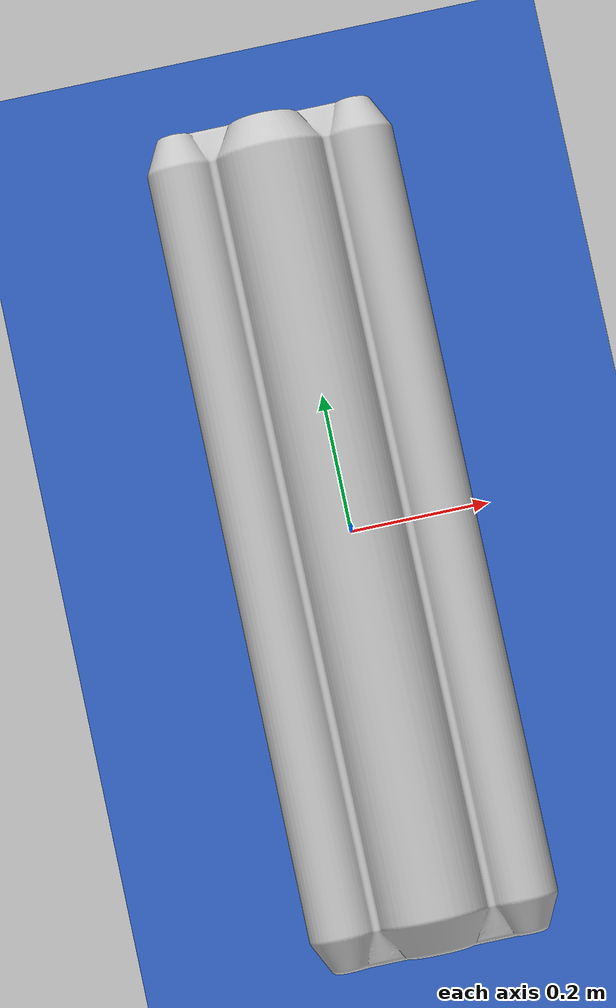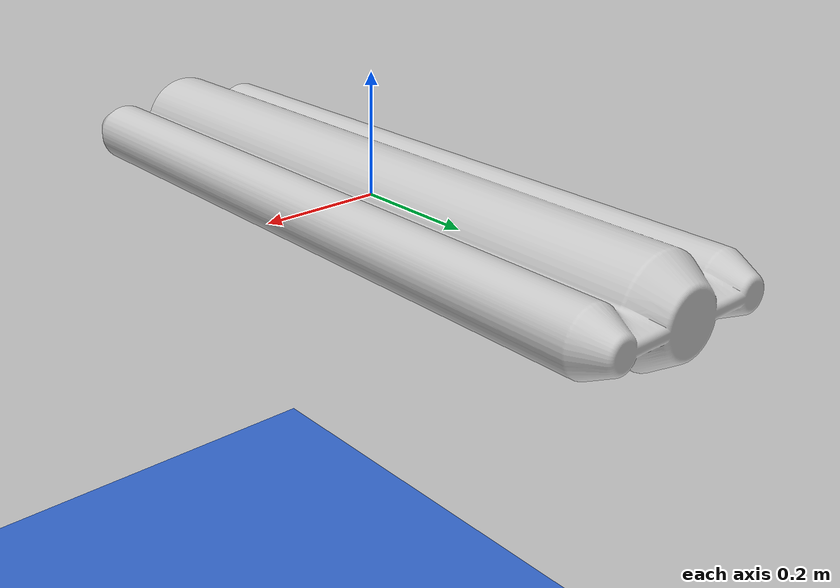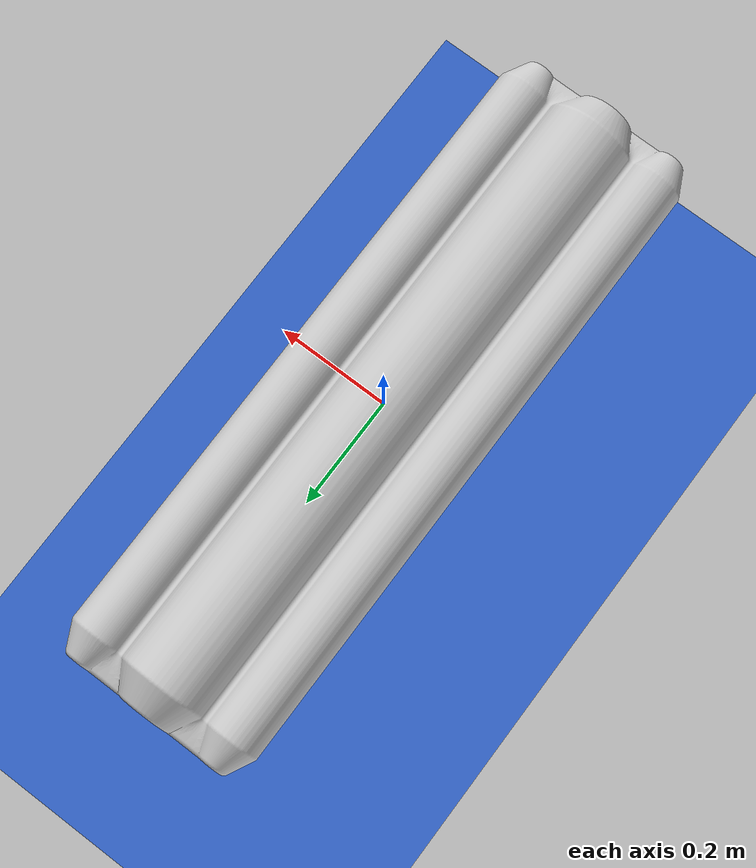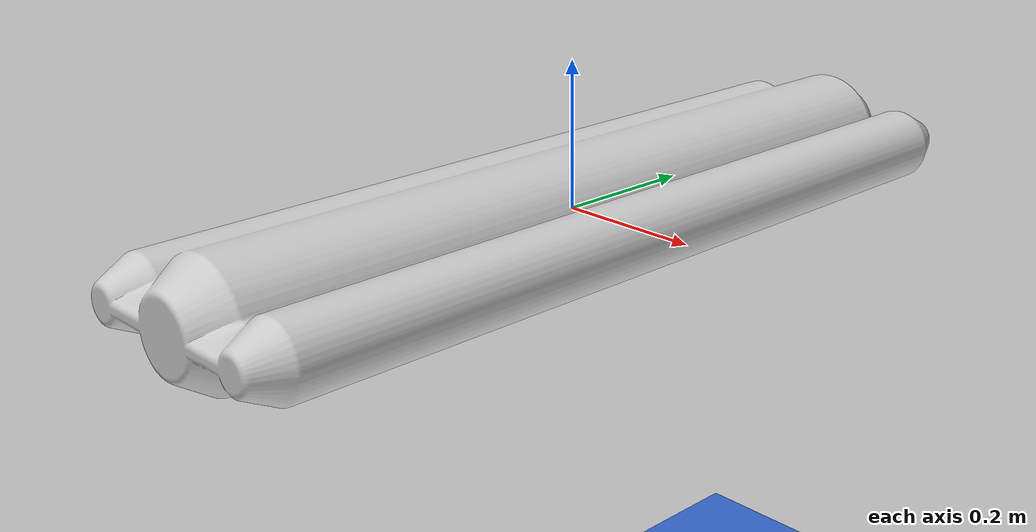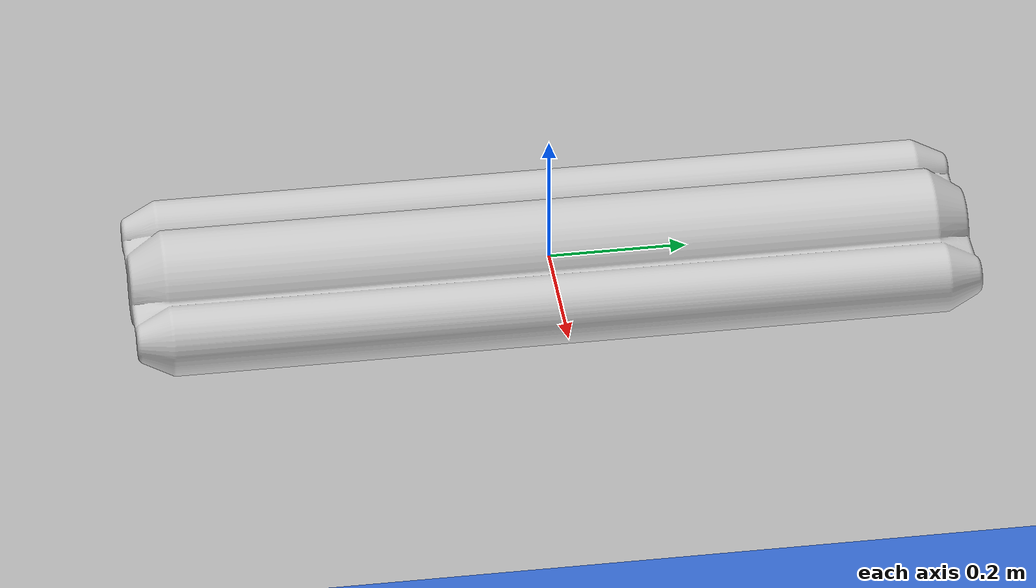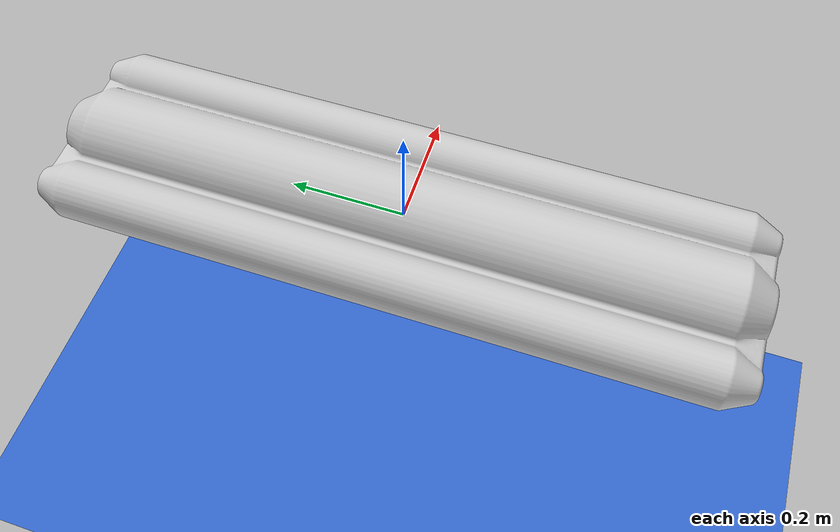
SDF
<?xml version='1.0' encoding='utf-8'?>
<sdf version="1.9">
	<world name="custom_world">

		<plugin
			filename="libignition-gazebo-scene-broadcaster-system.so"
			name="gz::sim::systems::SceneBroadcaster">
		</plugin>
		<physics name='20ms' type='ode'>
			<max_step_size>0.020</max_step_size>
			<real_time_factor>1</real_time_factor>
			<real_time_update_rate>50</real_time_update_rate>
		</physics>

		<plugin
			filename="ignition-gazebo-physics-system"
			name="ignition::gazebo::systems::Physics">
		</plugin>

		<plugin
			filename="ignition-gazebo-scene-broadcaster-system"
			name="ignition::gazebo::systems::SceneBroadcaster">
		</plugin>

		<plugin name='gz::sim::systems::UserCommands'
			filename='ignition-gazebo-user-commands-system' />

		<plugin name='gz::sim::systems::Buoyancy'
			filename='ignition-gazebo-buoyancy-system'>
			<uniform_fluid_density>1000</uniform_fluid_density>
		</plugin>

		<plugin filename="ignition-gazebo-imu-system"
			name="ignition::gazebo::systems::Imu" />

		<engine>ogre2</engine>
		<camera_pose>8.3 7 7.8 0 0.5 -2.4</camera_pose>
		<gravity>0 0 -9.8</gravity>
		<magnetic_field>6e-06 2.3e-05 -4.2e-05</magnetic_field>
		<atmosphere type='adiabatic' />

		<light name='sun' type='directional'>
			<pose>0 0 10 0 -0 0</pose>
			<cast_shadows>false</cast_shadows>
			<intensity>1</intensity>
			<direction>0 0 -1</direction> <!-- Vertical down -->
			<diffuse>1 1 1 1</diffuse>
			<specular>0.5 0.5 0.5 1</specular>
			<attenuation>
				<range>1000</range>
				<linear>0.01</linear>
				<constant>0.90000000000000002</constant>
				<quadratic>0.001</quadratic>
			</attenuation>
			<spot>
				<inner_angle>0</inner_angle>
				<outer_angle>0</outer_angle>
				<falloff>0</falloff>
			</spot>
		</light>

		<model name="fish_robot">

			<link name="fish_body">
				<pose>0 0 0 1.5708 0 0</pose>

				<!-- IMU 1: Center -->
				<sensor name="imu_sensor_1" type="imu">
					<pose>0 0 0 0 0 0</pose>
					<always_on>1</always_on>
					<update_rate>100</update_rate>
					<visualize>true</visualize>
					<topic>/imu_1</topic>
					<imu>
						<angular_velocity>true</angular_velocity>
						<linear_acceleration>true</linear_acceleration>
						<orientation>true</orientation>
					</imu>
				</sensor>

				<!-- IMU 2: Front -->
				<sensor name="imu_sensor_2" type="imu">
					<pose>0.2 0 0 0 0 0</pose>
					<always_on>1</always_on>
					<update_rate>100</update_rate>
					<visualize>true</visualize>
					<topic>/imu_2</topic>
					<imu>
						<angular_velocity>true</angular_velocity>
						<linear_acceleration>true</linear_acceleration>
						<orientation>true</orientation>
					</imu>
				</sensor>

				<!-- IMU 3: Left -->
				<sensor name="imu_sensor_3" type="imu">
					<pose>0 0.2 0 0 0 0</pose>
					<always_on>1</always_on>
					<update_rate>100</update_rate>
					<visualize>true</visualize>
					<topic>/imu_3</topic>
					<imu>
						<angular_velocity>true</angular_velocity>
						<linear_acceleration>true</linear_acceleration>
						<orientation>true</orientation>
					</imu>
				</sensor>

				<!-- IMU 4: Right -->
				<sensor name="imu_sensor_4" type="imu">
					<pose>0 -0.2 0 0 0 0</pose>
					<always_on>1</always_on>
					<update_rate>100</update_rate>
					<visualize>true</visualize>
					<topic>/imu_4</topic>
					<imu>
						<angular_velocity>true</angular_velocity>
						<linear_acceleration>true</linear_acceleration>
						<orientation>true</orientation>
					</imu>
				</sensor>

				<inertial>
					<pose>0 0 0 0 0 0</pose>
					<mass>62.99300000</mass>
					<inertia>

						<ixx>7.49</ixx>
						<ixy>0.00</ixy>
						<ixz>0.00</ixz>
						<iyy>7.49</iyy>
						<iyz>0.00</iyz>
						<izz>0.60</izz>
					</inertia>
				</inertial>

				<collision name="fish_collision">
					<geometry>
						<mesh>
							<uri>
								/home/maycuaaiz/Desktop/FishRobot-ROS/models/hull_mesh.stl</uri>
							<scale>1 1 1</scale>
						</mesh>
					</geometry>
				</collision>

				<visual name="fish_visual">
					<pose>-0.18130304269 -0.08284609487 -0.61094072595 0 0 0</pose>

					<cast_shadows>1</cast_shadows>
					<transparency>0</transparency>

					<geometry>
						<mesh>
							<uri>
								/home/maycuaaiz/Desktop/FishRobot-ROS/models/hull_mesh.stl</uri>
							<scale>1 1 1</scale>
						</mesh>
					</geometry>

					<material>
						<ambient>0.8 0.8 0.8 1</ambient>
						<diffuse>0.8 0.8 0.8 1</diffuse>
						<specular>0.8 0.8 0.8 1</specular>
						<emissive>0 0 0 1</emissive>
					</material>
				</visual>

				<enable_wind>false</enable_wind>
			</link>

			<plugin filename="ignition-gazebo-hydrodynamics-system"
				name="ignition::gazebo::systems::Hydrodynamics">
				<link_name>fish_body</link_name>

				<xDotU>-7.4019</xDotU>
				<xUU>-0.9576</xUU>
				<xU>-45.8669</xU>

				<yDotV>-13.3689</yDotV>
				<yVV>-0.2</yVV>
				<yV>-13.9664</yV>

				<zDotW>-52.5309</zDotW>
				<zWW>-31.90550</zWW>
				<zW>-56.1710</zW>

				<kDotP>-4.42167</kDotP>
				<kPabsP>-210.158</kPabsP>
				<kP>-104.72</kP>

				<mDotQ>-7.3833</mDotQ>
				<mQabsQ>-190</mQabsQ>
				<mQ>-10</mQ>

				<nDotR>-0.55848</nDotR>
				<nRabsR>-0.2106</nRabsR>
				<nR>-1.0869</nR>

			</plugin>

		</model>

		<model name='start_plane'>
			<static>true</static>
			<pose>0 0 -1 0 0 0</pose>
			<link name='start_link'>

				<visual name='start_visual'>
					<geometry>
						<plane>
							<normal>0 0 1</normal>
							<size>300 300</size>
						</plane>
					</geometry>
					<material>
						<ambient>0.2 0.4 0.8 1</ambient>    <!-- soft blue with full alpha -->
						<diffuse>0.2 0.4 0.8 1</diffuse>
						<transparency>0.3</transparency>  <!-- more visible -->
					</material>
				</visual>

			</link>
		</model>
	</world>

</sdf>
